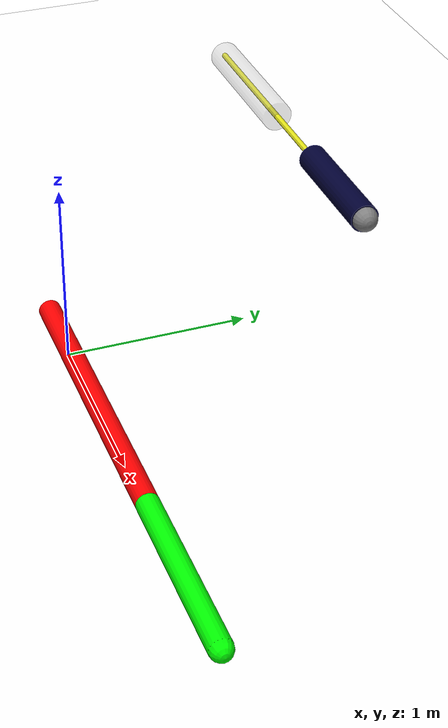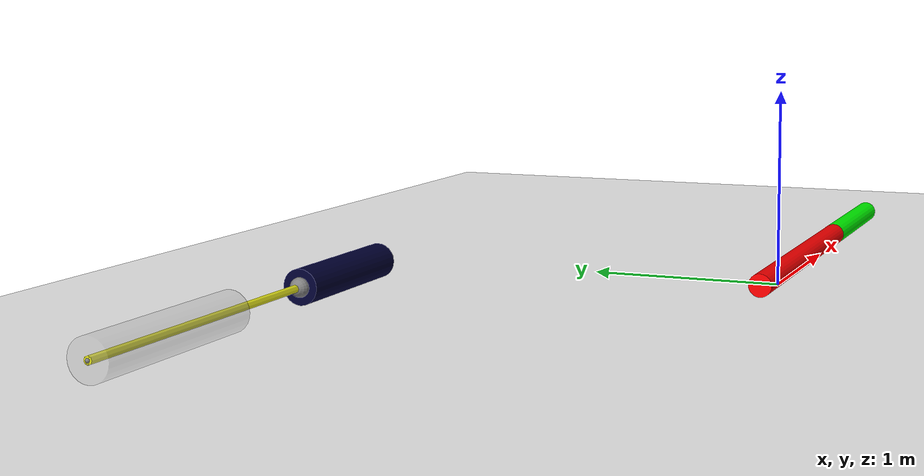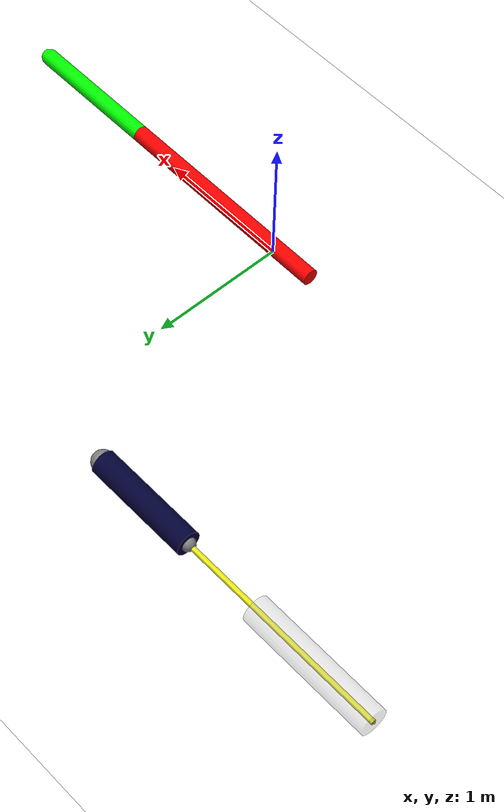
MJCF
<mujoco>
  <option gravity="0 0 0" />
  <worldbody>
    <light diffuse=".5 .5 .5" pos="0 0 10" dir="0 0 -1"/>
    <geom type="plane" size="6 4 0.1" rgba="1 1 1 1"/>

    <body pos="0.5 0 0.06" euler="-90 90 90">
      <joint name="1" type="hinge" axis="-1 0 0" pos="0 0 -0.866" damping="1" stiffness="0.8"/>
      <geom type="cylinder" size="0.06 0.866" rgba="1 0 0 1" mass="0.1"/>
      <body pos="0 0 1.366" euler="0 0 0">
        <joint name="2" type="hinge" axis="-1 0 0" pos="0 0 -0.5" damping="20" stiffness="0.5"/>
        <geom type="capsule" fromto="0 0 0.5 0 0 -0.5" size="0.06" friction = "0.8" rgba="0 1 0 1" mass="0.1"/>

      </body>
    </body>

    <!-- Cylinder (outer) -->
    <body pos="-2.5 2 0.1" euler="-90 90 90">
    <joint name="3" type="hinge" axis="-1 0 0" pos="0 0 -0.5" damping="0.01" stiffness="0.01"/>
      <geom type="cylinder" size="0.1 0.5" rgba="0.7 0.7 0.7 0.3" mass="0.3"/>
      <site name="cylinder_base" pos="0 0 -0.5" size="0.01"/>

      <!-- Piston (inner) -->
      <body pos="0 0 1.5">
        <joint name="piston_joint" type="slide" axis="0 0 1" pos="0 0 0" damping="3" stiffness="1"/>
        <geom type="cylinder" size="0.09 0.4" rgba="0 0 0.2 1" friction = "0.8" mass="0.2"/>
        <site name="piston_tip" size="0.05" pos="0 0 -0.4"/>
        <site name = "force_sensor" size= "0.08" pos="0 0 0.4"/>
      </body>
    </body>
  </worldbody>

  <tendon>
    <spatial name="spring_tendon"  width="0.02" rgba="0.9 0.9 0.1 1" stiffness="50" damping="0.01" range="0 0.8">
      <site site="cylinder_base"/>
      <site site="piston_tip"/>
    </spatial>
  </tendon>

  <sensor>
    <force name="my_force_sensor" site="force_sensor"/>
 </sensor>

  <actuator>
    <motor name="link1" joint="1" ctrllimited="true" ctrlrange="-20 20"/>
    <motor name="link2" joint="2" ctrllimited="true" ctrlrange="-20 20"/>
    <motor name="link3" joint="3" ctrllimited="true" ctrlrange="-20 20"/>
    <motor name="piston_motor" joint="piston_joint" ctrllimited="true" ctrlrange="-0.4 0.4"/>
  </actuator>
</mujoco>
